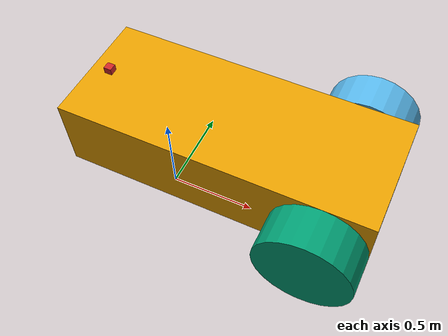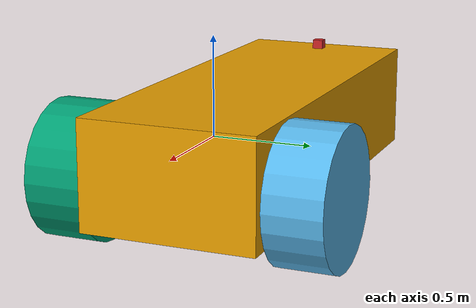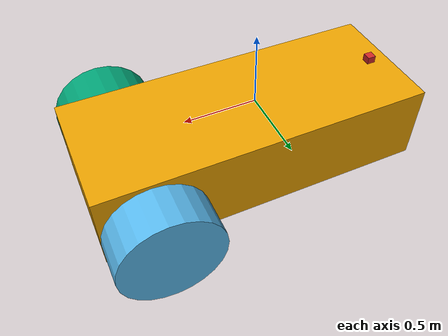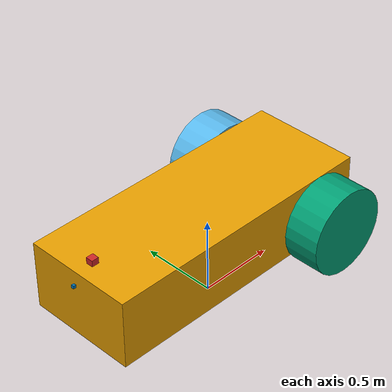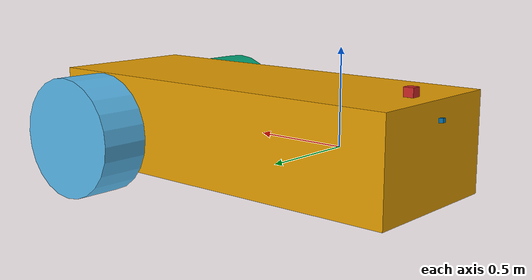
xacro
<?xml version="1.0" ?>
<robot xmlns:xacro="http://www.ros.org/wiki/xacro" name="RobotV2">

  <joint name="RobotV2__link_0_JOINT_5" type="revolute">
    <parent link="RobotV2__link_0"/>
    <child link="RobotV2__link_1"/>
    <origin rpy="1.57 0 0" xyz="0.93284  0.85362  0.06166"/>
    <axis xyz="0 0 1"/>
    <limit effort="1000" lower="-1.79769e+308" upper="1.79769e+308" velocity="1000"/>
  </joint>
  <joint name="RobotV2__link_0_JOINT_7" type="revolute">
    <parent link="RobotV2__link_0"/>
    <child link="RobotV2__link_1_clone"/>
    <origin rpy="1.57 0 0" xyz="0.93284 -0.17784  0.06167"/>
    <axis xyz="0 0 1"/>
    <limit effort="1000" lower="-1.79769e+308" upper="1.79769e+308" velocity="1000"/>
  </joint>
  <link name="RobotV2__link_0">
    <inertial>
      <mass value="0.718514"/>
      <origin rpy="0  0  0" xyz="0   0   0.4"/>
      <inertia ixx="0.0488765" ixy="0" ixz="0" iyy="0.24281" iyz="0" izz="0.264198"/>
    </inertial>
    <collision name="RobotV2__collision">
      <origin rpy="0  0  0" xyz="0.25487  0.33038  0.12222"/>
      <geometry>
        <box size="1.95593 0.765993 0.479111"/>
      </geometry>
    </collision>
    <visual name="RobotV2__visual">
      <origin rpy="0  0  0" xyz="0.25487  0.33038  0.12222"/>
      <geometry>
        <box size="1.95593 0.765993 0.479111"/>
      </geometry>
    </visual>

    </link>

  <link name="RobotV2__link_1">
    <inertial>
      <mass value="1"/>
      <origin rpy="0  0  0" xyz="0  0  0"/>
      <inertia ixx="0.145833" ixy="0" ixz="0" iyy="0.145833" iyz="0" izz="0.125"/>
    </inertial>
    <collision name="RobotV2__collision">
      <origin rpy="0  0  0" xyz="0  0  0"/>
      <geometry>
        <cylinder length="0.25" radius="0.3"/>
      </geometry>
    </collision>
    <visual name="RobotV2__visual">
      <origin rpy="0  0  0" xyz="0  0  0"/>
      <geometry>
        <cylinder length="0.25" radius="0.3"/>
      </geometry>
    </visual>
  </link>
  <link name="RobotV2__link_1_clone">
    <inertial>
      <mass value="1"/>
      <origin rpy="0  0  0" xyz="0  0  0"/>
      <inertia ixx="0.145833" ixy="0" ixz="0" iyy="0.145833" iyz="0" izz="0.125"/>
    </inertial>
    <collision name="RobotV2__collision">
      <origin rpy="0  0  0" xyz="0  0  0"/>
      <geometry>
        <cylinder length="0.25" radius="0.3"/>
      </geometry>
    </collision>
    <visual name="RobotV2__visual">
      <origin rpy="0  0  0" xyz="0  0  0"/>
      <geometry>
        <cylinder length="0.25" radius="0.3"/>
      </geometry>
    </visual>
  </link>

  <joint name="camera_joint" type="fixed">
    <axis xyz="0 1 0" />
    <origin xyz="-0.6 0.33 0.38" rpy="0 0 3.14"/>
    <parent link="RobotV2__link_0"/>
    <child link="camera_link"/>
  </joint>

  <!-- Camera -->
  <link name="camera_link">
    <collision>
      <origin xyz="0 0 0" rpy="0 0 0"/>
      <geometry>
    <box size="0.05 0.05 0.05"/>
      </geometry>
    </collision>

    <visual>
      <origin xyz="0 0 0" rpy="0 0 0"/>
      <geometry>
    <box size="0.05 0.05 0.05"/>
      </geometry>
      <material name="red"/>
    </visual>

    <inertial>
      <mass value="1e-5" />
      <origin xyz="0 0 0" rpy="0 0 0"/>
      <inertia ixx="1e-6" ixy="0" ixz="0" iyy="1e-6" iyz="0" izz="1e-6" />
    </inertial>
  </link>

<!-- camera -->
  <gazebo reference="camera_link">
    <sensor type="camera" name="camera1">
      <update_rate>30.0</update_rate>
      <camera name="head">
        <horizontal_fov>1.3962634</horizontal_fov>
        <image>
          <width>800</width>
          <height>800</height>
          <format>R8G8B8</format>
        </image>
        <clip>
          <near>0.02</near>
          <far>300</far>
        </clip>
        <noise>
          <type>gaussian</type>
          <!-- Noise is sampled independently per pixel on each frame.
               That pixel's noise value is added to each of its color
               channels, which at that point lie in the range [0,1]. -->
          <mean>0.0</mean>
          <stddev>0.007</stddev>
        </noise>
      </camera>
      <plugin name="camera_controller" filename="libgazebo_ros_camera.so">
        <alwaysOn>true</alwaysOn>
        <updateRate>0.0</updateRate>
        <cameraName>monrobot/camera1</cameraName>
        <imageTopicName>image_raw</imageTopicName>
        <cameraInfoTopicName>camera_info</cameraInfoTopicName>
        <frameName>camera_link</frameName>
        <hackBaseline>0.07</hackBaseline>
        <distortionK1>0.0</distortionK1>
        <distortionK2>0.0</distortionK2>
        <distortionK3>0.0</distortionK3>
        <distortionT1>0.0</distortionT1>
        <distortionT2>0.0</distortionT2>
      </plugin>
    </sensor>
  </gazebo>

  <transmission name="left_wheel_transmission">
    <type>transmission_interface/SimpleTransmission</type>
    <joint name="RobotV2__link_0_JOINT_5">
      <hardwareInterface>hardware_interface/VelocityJointInterface</hardwareInterface>
    </joint>
    <actuator name="left_wheel_actuator">
      <mechanicalReduction>7</mechanicalReduction>
      <hardwareInterface>VelocityJointInterface</hardwareInterface>
    </actuator>
  </transmission>

  <transmission name="right_wheel_transmission">
    <type>transmission_interface/SimpleTransmission</type>
    <joint name="RobotV2__link_0_JOINT_7">
      <hardwareInterface>hardware_interface/VelocityJointInterface</hardwareInterface>
    </joint>
    <actuator name="right_wheel_actuator">
      <mechanicalReduction>7</mechanicalReduction>
      <hardwareInterface>VelocityJointInterface</hardwareInterface>
    </actuator>
  </transmission>

<!-- LIDAR -->
  <xacro:include filename="$(find icpr_robotsimu_results)/model/spinning_joint.urdf.xacro" />

<!-- hokuyo -->
  <gazebo reference="laser_link">
    <sensor type="ray" name="head_hokuyo_sensor">
      <pose>0 0 0 0 0 0</pose>
      <visualize>true</visualize>
      <update_rate>40</update_rate>
      <ray>
        <scan>
          <horizontal>
            <samples>720</samples>
            <resolution>1</resolution>
            <min_angle>-1.570796</min_angle>
            <max_angle>1.570796</max_angle>
          </horizontal>
        </scan>
        <range>
          <min>0.10</min>
          <max>30.0</max>
          <resolution>0.01</resolution>
        </range>
        <noise>
          <type>gaussian</type>
          <mean>0.0</mean>
          <stddev>0.01</stddev>
        </noise>
      </ray>
      <plugin name="gazebo_ros_head_hokuyo_controller" filename="libgazebo_ros_laser.so">
        <topicName>/monrobot/laser/scan</topicName>
        <frameName>laser_link</frameName>
      </plugin>
    </sensor>
  </gazebo>
</robot>

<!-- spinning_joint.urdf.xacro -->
<robot name="Lidar" xmlns:xacro="http://ros.org/wiki/xacro">

  <xacro:property name="sensor_size" value="0.02"/>

  <joint name="laser_joint" type="continuous">
      <origin xyz="0.15 0 -0.1" rpy="3.14 -0.1 0"/>
      <parent link="camera_link"/>
      <child link="laser_link"/>
      <!--limit lower="-1.0" upper="1.0" effort="100.0" velocity="10.0"/-->
  </joint>

  <link name="laser_link">
      <collision>
          <origin xyz="0 0 0" rpy="0 0 0"/>
          <geometry>
              <box size="${sensor_size} ${sensor_size} ${sensor_size}"/>
          </geometry>
      </collision>

      <visual>
          <origin xyz="0 0 0" rpy="0 0 0"/>
          <geometry>
              <box size="${sensor_size} ${sensor_size} ${sensor_size}"/>
          </geometry>
      </visual>

      <inertial>
          <mass value="1e-5" />
          <origin xyz="0 0 0" rpy="0 0 0"/>
          <inertia ixx="1e-6" ixy="0" ixz="0" iyy="1e-6" iyz="0" izz="1e-6"/>
      </inertial>
  </link>

  <gazebo>
      <plugin name="gazebo_ros_control" filename="libgazebo_ros_control.so"/>
  </gazebo>

  <transmission name="laser_transmission">
      <type>transmission_interface/SimpleTransmission</type>
      <joint name="laser_joint">
          <hardwareInterface>VelocityJointInterface</hardwareInterface>
      </joint>
      <actuator name="laser_motor">
          <hardwareInterface>VelocityJointInterface</hardwareInterface>
          <mechanicalReduction>1</mechanicalReduction>
      </actuator>
  </transmission>

</robot>
